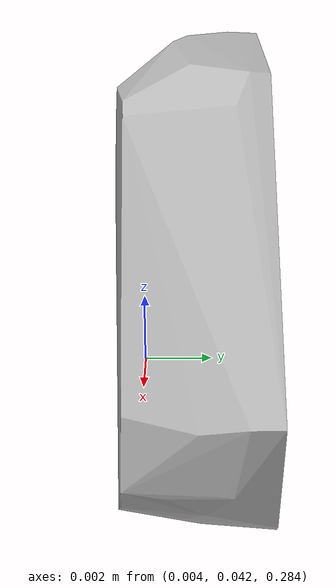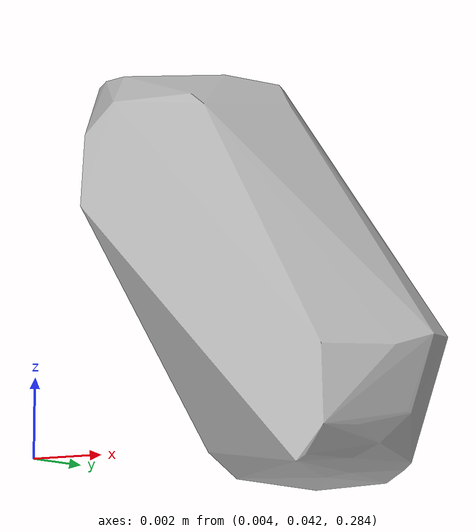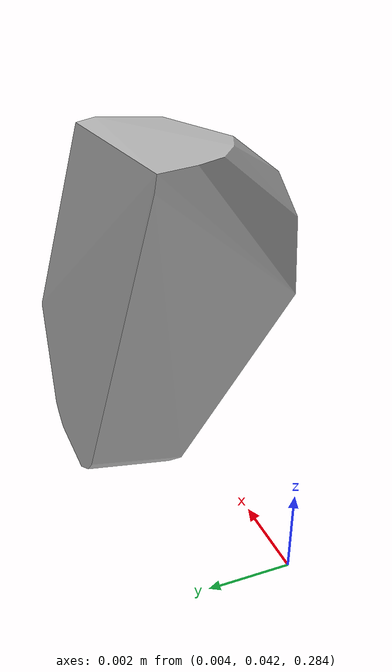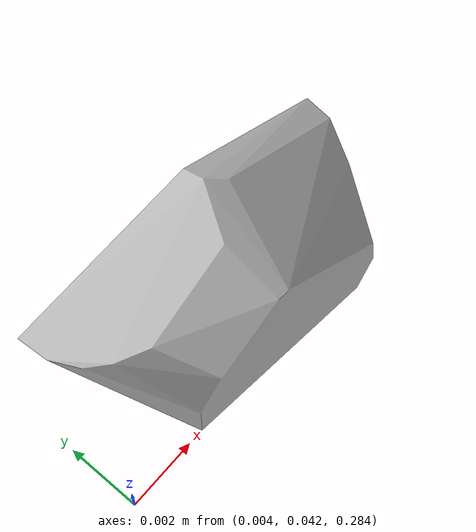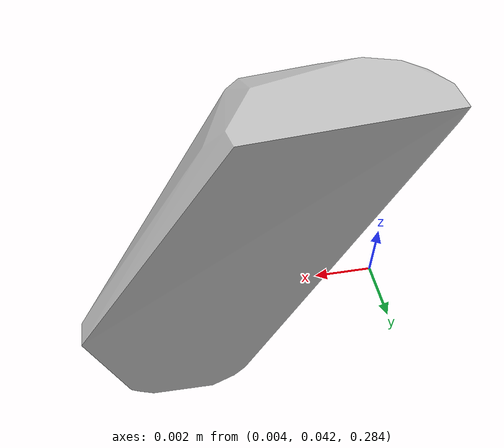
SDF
<?xml version="1.0"?>
<sdf version="1.7">
  <model name="vascular_partexport019">
    <link name="vascular_partexport019_body">
      <visual name="vascular_partexport019_visual">
        <geometry>
          <mesh>
            <uri>vascular_partexport019.obj</uri>
          </mesh>
        </geometry>
      </visual>
      <collision name="vascular_partexport019_collision">
        <geometry>
          <mesh>
            <uri>vascular_partexport019.obj</uri>
          </mesh>
        </geometry>
      </collision>
    </link>
    <frame name="vascular_partexport019_center">
      <pose relative_to="vascular_partexport019_body">0 0 0 0 0 0</pose>
    </frame>
  </model>
</sdf>
